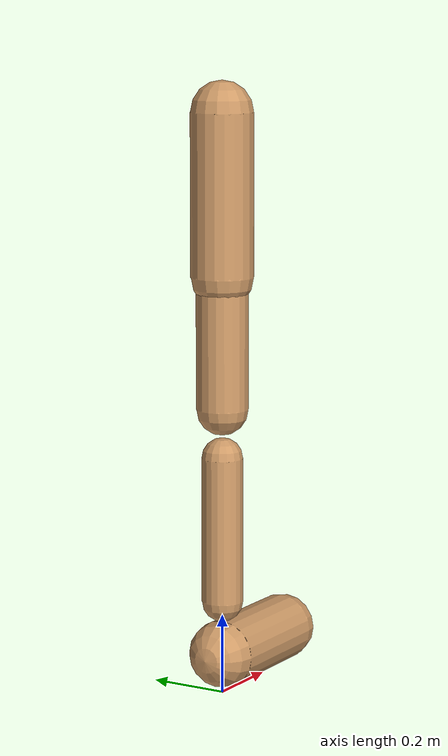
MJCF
<mujoco model="walker2d">
  <compiler angle="degree" coordinate="global" inertiafromgeom="true" />
  <default>
    <joint armature="0.01" damping=".1" limited="true" />
    <geom conaffinity="0" condim="3" contype="1" density="1000" friction="0.8 .1 .1" rgba="0.8 0.6 .4 1" />
  </default>
  <option integrator="RK4" timestep="0.002" />
  <worldbody>

    <body name="torso" pos="0 0 -0.2599912340100689">
      <joint armature="0" axis="1 0 0" damping="0" limited="false" name="ignorex" pos="0 0 0" stiffness="0" type="slide" />
      <joint armature="0" axis="0 0 1" damping="0" limited="false" name="ignorez" pos="0 0 0" ref="1.25" stiffness="0" type="slide" />
      <joint armature="0" axis="0 1 0" damping="0" limited="false" name="ignorey" pos="0 0 0" stiffness="0" type="hinge" />
      <geom fromto="0 0 1.45 0 0 1.05" name="torso_geom" size="0.07761228303346251" type="capsule" />
      <body name="thigh">
        <joint axis="0 -1 0" name="thigh_joint" pos="0 0 1.05" range="-150 0" type="hinge" />
        <geom fromto="0.0 0.0 1.05 0.0 0.0 0.7231537424258221" name="thigh_geom" size="0.06449921043846923" type="capsule" />
        <body name="leg" pos="0.0 0.0 0.12315374242582211">
          <joint axis="0 -1 0" name="leg_joint" pos="0 0 0.6" range="-150 0" type="hinge" />
          <geom fromto="0.0 0.0 0.6 0.0 0.0 0.2368374915842468" name="leg_geom" size="0.05159936835077539" type="capsule" />
          <body name="foot" pos="0.0 0.0 0.1368374915842468">
            <joint axis="0 -1 0" name="foot_joint" pos="0 0 0.1" range="-45 45" type="hinge" />
            <geom fromto="-0.0 0.0 0.09999999999999999 0.29300494145965045 0.0 0.09999999999999999" name="foot_geom" size="0.08417243555870006" type="capsule" />
          </body>
        </body>
      </body>

      <body name="thigh_left">
        <joint axis="0 -1 0" name="thigh_left_joint" pos="0 0 1.05" range="-150 0" type="hinge" />
        <geom fromto="0.0 0.0 1.05 0.0 0.0 0.7231537424258221" name="thigh_left_geom" rgba=".7 .3 .6 1" size="0.06449921043846923" type="capsule" />
        <body name="leg_left" pos="0.0 0.0 0.12315374242582211">
          <joint axis="0 -1 0" name="leg_left_joint" pos="0 0 0.6" range="-150 0" type="hinge" />
          <geom fromto="0.0 0.0 0.6 0.0 0.0 0.2368374915842468" name="leg_left_geom" rgba=".7 .3 .6 1" size="0.05159936835077539" type="capsule" />
          <body name="foot_left" pos="0.0 0.0 0.1368374915842468">
            <joint axis="0 -1 0" name="foot_left_joint" pos="0 0 0.1" range="-45 45" type="hinge" />
            <geom fromto="-0.0 0.0 0.09999999999999999 0.29300494145965045 0.0 0.09999999999999999" name="foot_left_geom" rgba=".7 .3 .6 1" size="0.08417243555870006" type="capsule" />
          </body>
        </body>
      </body>
    </body>
  </worldbody>
  <actuator>

    <motor ctrllimited="true" ctrlrange="-1.0 1.0" gear="100" joint="thigh_joint" />
    <motor ctrllimited="true" ctrlrange="-1.0 1.0" gear="100" joint="leg_joint" />
    <motor ctrllimited="true" ctrlrange="-1.0 1.0" gear="100" joint="foot_joint" />
    <motor ctrllimited="true" ctrlrange="-1.0 1.0" gear="100" joint="thigh_left_joint" />
    <motor ctrllimited="true" ctrlrange="-1.0 1.0" gear="100" joint="leg_left_joint" />
    <motor ctrllimited="true" ctrlrange="-1.0 1.0" gear="100" joint="foot_left_joint" />

  </actuator>
</mujoco>
